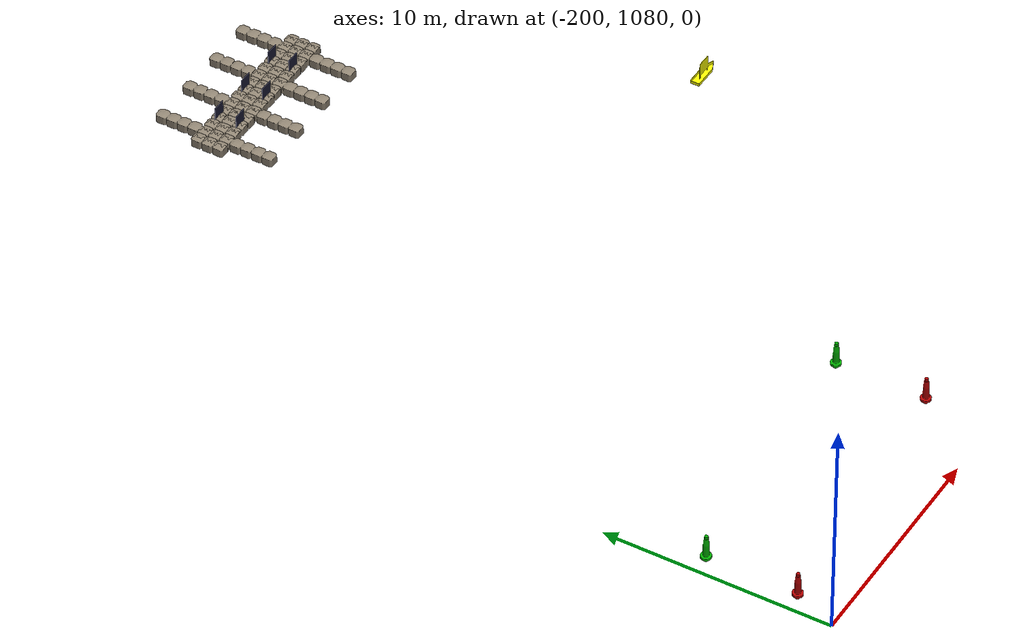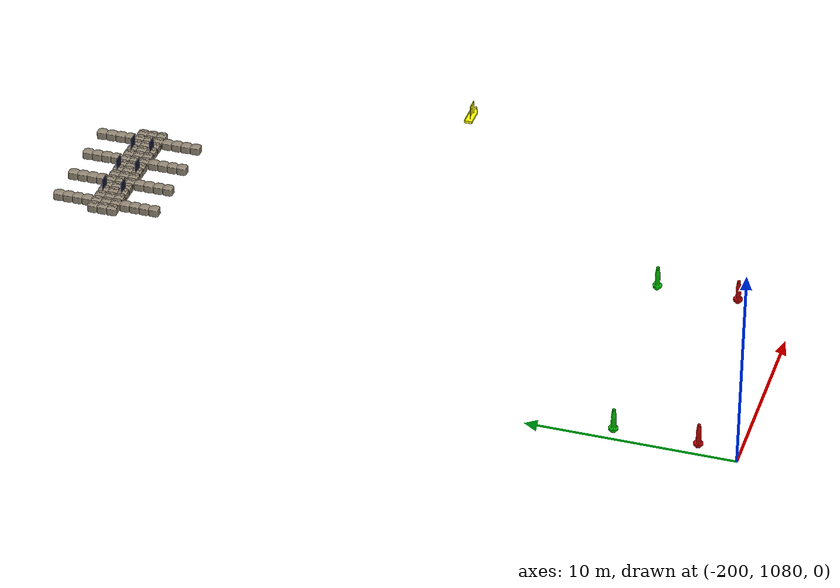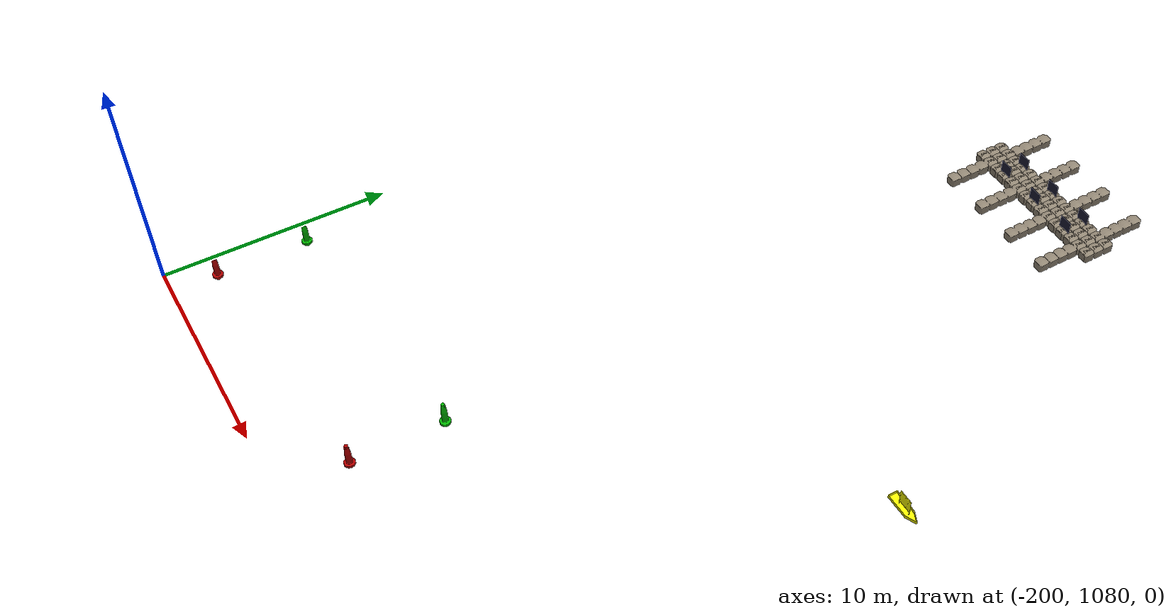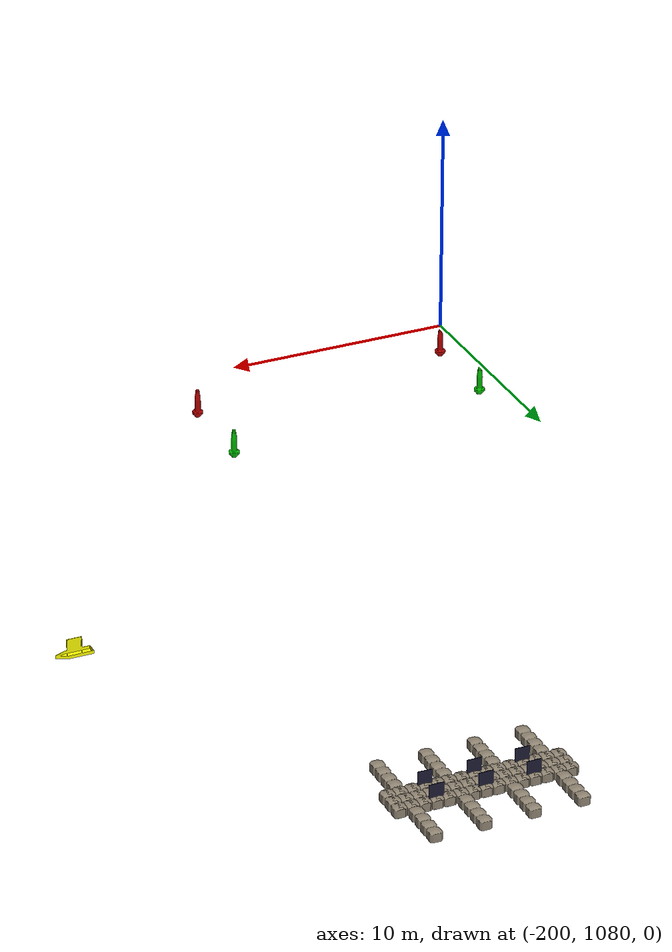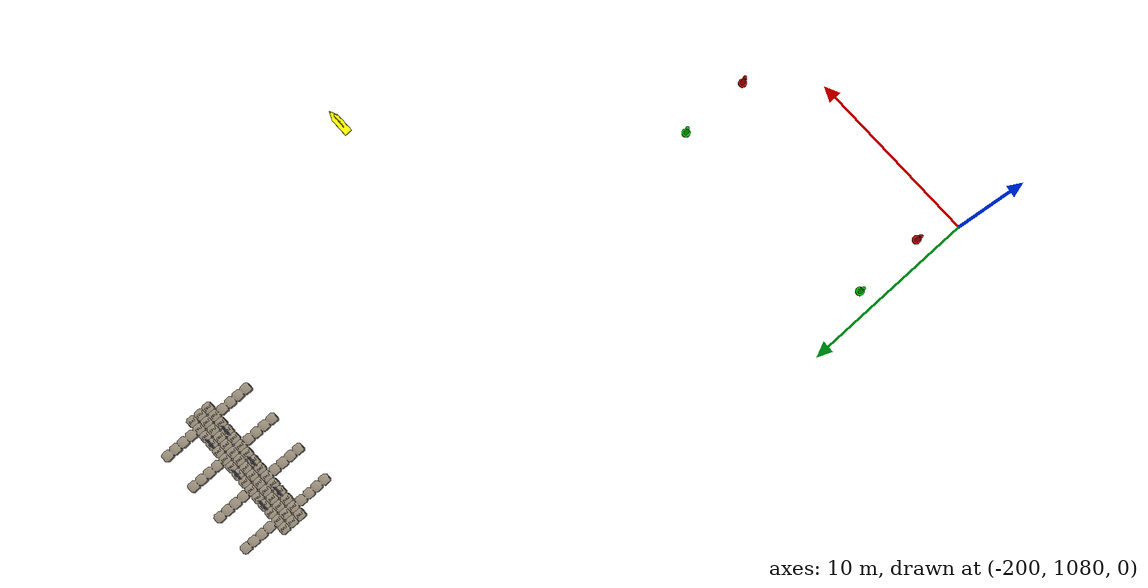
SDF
<sdf version="1.9">
 <world name="nbpark">
  <physics name="4ms" type="dart">
   <max_step_size>0.004</max_step_size>
   <real_time_factor>1.0</real_time_factor>
  </physics>
  <plugin filename="gz-sim-physics-system" name="gz::sim::systems::Physics"/>
  <plugin filename="gz-sim-user-commands-system" name="gz::sim::systems::UserCommands"/>
  <plugin filename="gz-sim-sensors-system" name="gz::sim::systems::Sensors">
   <render_engine>ogre2</render_engine>
   <disable_on_drained_battery>true</disable_on_drained_battery>
  </plugin>
  <plugin filename="gz-sim-imu-system" name="gz::sim::systems::Imu"/>
  <plugin filename="gz-sim-magnetometer-system" name="gz::sim::systems::Magnetometer"/>
  <plugin filename="gz-sim-forcetorque-system" name="gz::sim::systems::ForceTorque"/>
  <plugin filename="gz-sim-particle-emitter2-system" name="gz::sim::systems::ParticleEmitter2"/>
  <plugin filename="gz-sim-scene-broadcaster-system" name="gz::sim::systems::SceneBroadcaster"/>
  <plugin filename="gz-sim-contact-system" name="gz::sim::systems::Contact"/>
  <plugin filename="gz-sim-navsat-system" name="gz::sim::systems::NavSat"/>
  <spherical_coordinates>
   <surface_model>EARTH_WGS84</surface_model>
   <world_frame_orientation>ENU</world_frame_orientation>
   <latitude_deg>27.367256</latitude_deg>
   <longitude_deg>-82.451120</longitude_deg>
   <elevation>0.0</elevation>
   <heading_deg>0.0</heading_deg>
  </spherical_coordinates>
  <light type="directional" name="sun">
   <pose>0 0 10 0 0 0</pose>
   <diffuse>0.8 0.8 0.8 1</diffuse>
   <specular>0 0 0 1</specular>
   <attenuation>
    <range>1000</range>
    <constant>0.9</constant>
    <linear>0.01</linear>
    <quadratic>0.001</quadratic>
   </attenuation>
   <direction>-0.5 0.1 -0.9</direction>
  </light>
  <plugin filename="libPublisherPlugin.so" name="vrx::PublisherPlugin">
   <message type="gz.msgs.Param" topic="/vrx/wavefield/parameters" every="2.0">params {
          key: "direction"
          value {
            type: DOUBLE
            double_value: 0.0
          }
        }
        params {
          key: "gain"
          value {
            type: DOUBLE
            double_value: 0
          }
        }
        params {
          key: "period"
          value {
            type: DOUBLE
            double_value: 5
          }
        }
        params {
          key: "steepness"
          value {
            type: DOUBLE
            double_value: 0
          }
        }</message>
  </plugin>
  <include>
   <name>mandatory_challenge</name>
   <pose>-180 1088 0 0 0 3.14</pose>
   <uri>mandatory_challenge</uri>
  </include>
  <include><name>docking_challenge</name><pose>-185 1115 0 0 0 0</pose><uri>docking_challenge</uri></include>
  <include><name>static_vessel</name><pose>-175 1100 0.27 0 0 0</pose><uri>static_vessel</uri></include>
 </world>
</sdf>

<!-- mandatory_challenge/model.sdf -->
<sdf version="1.6">
  <model name="mandatory_challenge">
    <!-- Gate G1 -->
    <include>
      <name>marker_buoy_port_G1</name>
      <pose>7 5 0 0 0 0</pose>
      <uri>marker_buoy_port</uri>
    </include>
    <include>
      <name>marker_buoy_starboard_G1</name>
      <pose>7 1 0 0 0 0</pose>
      <uri>marker_buoy_starboard</uri>
    </include>

    <!-- Gate G2 -->
    <include>
      <name>marker_buoy_port_G2</name>
      <pose>19 6 0 0 0 0</pose>
      <uri>marker_buoy_port</uri>
    </include>
    <include>
      <name>marker_buoy_starboard_G2</name>
      <pose>19 2 0 0 0 0</pose>
      <uri>marker_buoy_starboard</uri>
    </include>
  </model>
</sdf>

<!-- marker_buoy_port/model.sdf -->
<sdf version="1.6">
  <model name="marker_buoy_port">
    <link name='cylinder'>
      <inertial>
        <mass>0.068793</mass>
        <inertia>
          <ixx>0.00543853</ixx>
          <ixy>0</ixy>
          <ixz>0</ixz>
          <iyy>0.00543853</iyy>
          <iyz>0</iyz>
          <izz>0.0006256</izz>
        </inertia>
        <pose>0 0 0 0 -0 0</pose>
      </inertial>
      <pose>0 0 0.496472 0 -0 0</pose>
      <gravity>1</gravity>
      <self_collide>0</self_collide>
      <kinematic>0</kinematic>
      <enable_wind>0</enable_wind>
      <collision name='collision'>
        <laser_retro>0</laser_retro>
        <max_contacts>10</max_contacts>
        <pose>0 0 0 0 -0 0</pose>
        <geometry>
          <cylinder>
            <radius>0.3</radius>
            <length>0.945576</length>
          </cylinder>
        </geometry>
        <surface>
          <friction>
            <ode>
              <mu>1</mu>
              <mu2>1</mu2>
              <fdir1>0 0 0</fdir1>
              <slip1>0</slip1>
              <slip2>0</slip2>
            </ode>
            <torsional>
              <coefficient>1</coefficient>
              <patch_radius>0</patch_radius>
              <surface_radius>0</surface_radius>
              <use_patch_radius>1</use_patch_radius>
              <ode>
                <slip>0</slip>
              </ode>
            </torsional>
          </friction>
          <bounce>
            <restitution_coefficient>0</restitution_coefficient>
            <threshold>1e+06</threshold>
          </bounce>
          <contact>
            <collide_without_contact>0</collide_without_contact>
            <collide_without_contact_bitmask>1</collide_without_contact_bitmask>
            <collide_bitmask>1</collide_bitmask>
            <ode>
              <soft_cfm>0</soft_cfm>
              <soft_erp>0.2</soft_erp>
              <kp>1e+13</kp>
              <kd>1</kd>
              <max_vel>0.01</max_vel>
              <min_depth>0</min_depth>
            </ode>
            <bullet>
              <split_impulse>1</split_impulse>
              <split_impulse_penetration_threshold>-0.01</split_impulse_penetration_threshold>
              <soft_cfm>0</soft_cfm>
              <soft_erp>0.2</soft_erp>
              <kp>1e+13</kp>
              <kd>1</kd>
            </bullet>
          </contact>
        </surface>
      </collision>
    </link>

    <link name='base'>
      <inertial>
        <mass>0.0961519</mass>
        <inertia>
          <ixx>0.00264433</ixx>
          <ixy>0</ixy>
          <ixz>0</ixz>
          <iyy>0.00264433</iyy>
          <iyz>0</iyz>
          <izz>0.00382696</izz>
        </inertia>
        <pose>0 0 0 0 -0 0</pose>
      </inertial>
      <pose>0 0 0.003528 0 -0 0</pose>
      <gravity>1</gravity>
      <self_collide>0</self_collide>
      <kinematic>0</kinematic>
      <enable_wind>0</enable_wind>
      <visual name="visual">
        <pose>0 0 -0.3 1.57 0 0</pose>
        <geometry>
          <mesh>
            <uri>file://marker_buoy_port/meshes/sur-Mark_marker.stl</uri>
            <scale>0.001 0.001 0.001</scale>
          </mesh>
        </geometry>
        <material>
          <ambient>0.3 0.3 0.3 1</ambient>
          <diffuse>0.7 0 0 1</diffuse>
          <specular>0.01 0.01 0.01 1</specular>
        </material>
      </visual>
      <collision name='collision'>
        <laser_retro>0</laser_retro>
        <max_contacts>10</max_contacts>
        <pose>0 0 0 0 -0 0</pose>
        <geometry>
          <cylinder>
            <radius>0.282139</radius>
            <length>0.302013</length>
          </cylinder>
        </geometry>
        <surface>
          <friction>
            <ode>
              <mu>1</mu>
              <mu2>1</mu2>
              <fdir1>0 0 0</fdir1>
              <slip1>0</slip1>
              <slip2>0</slip2>
            </ode>
            <torsional>
              <coefficient>1</coefficient>
              <patch_radius>0</patch_radius>
              <surface_radius>0</surface_radius>
              <use_patch_radius>1</use_patch_radius>
              <ode>
                <slip>0</slip>
              </ode>
            </torsional>
          </friction>
          <bounce>
            <restitution_coefficient>0</restitution_coefficient>
            <threshold>1e+06</threshold>
          </bounce>
          <contact>
            <collide_without_contact>0</collide_without_contact>
            <collide_without_contact_bitmask>1</collide_without_contact_bitmask>
            <collide_bitmask>1</collide_bitmask>
            <ode>
              <soft_cfm>0</soft_cfm>
              <soft_erp>0.2</soft_erp>
              <kp>1e+13</kp>
              <kd>1</kd>
              <max_vel>0.01</max_vel>
              <min_depth>0</min_depth>
            </ode>
            <bullet>
              <split_impulse>1</split_impulse>
              <split_impulse_penetration_threshold>-0.01</split_impulse_penetration_threshold>
              <soft_cfm>0</soft_cfm>
              <soft_erp>0.2</soft_erp>
              <kp>1e+13</kp>
              <kd>1</kd>
            </bullet>
          </contact>
        </surface>
      </collision>
    </link>
    <joint name = "joint1" type = "fixed">
      <parent>base</parent>
      <child>cylinder</child>
    </joint>
    <static>0</static>
    <allow_auto_disable>1</allow_auto_disable>
    <!-- Hydrodynamics plugin -->
      <plugin
        filename="gz-waves1-hydrodynamics-system"
        name="gz::sim::systems::Hydrodynamics">

        <link_name>cylinder</link_name>

        <hydrodynamics>
            <damping_on>1</damping_on>
            <viscous_drag_on>1</viscous_drag_on>
            <pressure_drag_on>1</pressure_drag_on>

            <!-- Linear and Angular Damping -->
            <cDampL1>1.0E-6</cDampL1>
            <cDampL2>1.0E-6</cDampL2>
            <cDampR1>1.0E-6</cDampR1>
            <cDampR2>1.0E-6</cDampR2>

            <!-- 'Pressure' Drag -->
            <cPDrag1>1.0E+2</cPDrag1>
            <cPDrag2>1.0E+2</cPDrag2>
            <fPDrag>0.4</fPDrag>
            <cSDrag1>1.0E+2</cSDrag1>
            <cSDrag2>1.0E+2</cSDrag2>
            <fSDrag>0.4</fSDrag>
            <vRDrag>1.0</vRDrag>
        </hydrodynamics>

        <!-- Control visibility of markers -->
        <markers>
            <update_rate>10</update_rate>
            <water_patch>0</water_patch>
            <waterline>0</waterline>
            <underwater_surface>0</underwater_surface>
        </markers>
      </plugin>
  </model>
</sdf>

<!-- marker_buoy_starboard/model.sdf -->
<sdf version='1.6'>
  <model name='Starboard Marker Buoy (green)'>
    <link name='cylinder'>
      <inertial>
        <mass>0.068793</mass>
        <inertia>
          <ixx>0.00543853</ixx>
          <ixy>0</ixy>
          <ixz>0</ixz>
          <iyy>0.00543853</iyy>
          <iyz>0</iyz>
          <izz>0.0006256</izz>
        </inertia>
        <pose>0 0 0 0 -0 0</pose>
      </inertial>
      <pose>0 0 0.496472 0 -0 0</pose>
      <gravity>1</gravity>
      <self_collide>0</self_collide>
      <kinematic>0</kinematic>
      <enable_wind>0</enable_wind>
      <collision name='collision'>
        <laser_retro>0</laser_retro>
        <max_contacts>10</max_contacts>
        <pose>0 0 0 0 -0 0</pose>
        <geometry>
          <cylinder>
            <radius>0.3</radius>
            <length>0.945576</length>
          </cylinder>
        </geometry>
        <surface>
          <friction>
            <ode>
              <mu>1</mu>
              <mu2>1</mu2>
              <fdir1>0 0 0</fdir1>
              <slip1>0</slip1>
              <slip2>0</slip2>
            </ode>
            <torsional>
              <coefficient>1</coefficient>
              <patch_radius>0</patch_radius>
              <surface_radius>0</surface_radius>
              <use_patch_radius>1</use_patch_radius>
              <ode>
                <slip>0</slip>
              </ode>
            </torsional>
          </friction>
          <bounce>
            <restitution_coefficient>0</restitution_coefficient>
            <threshold>1e+06</threshold>
          </bounce>
          <contact>
            <collide_without_contact>0</collide_without_contact>
            <collide_without_contact_bitmask>1</collide_without_contact_bitmask>
            <collide_bitmask>1</collide_bitmask>
            <ode>
              <soft_cfm>0</soft_cfm>
              <soft_erp>0.2</soft_erp>
              <kp>1e+13</kp>
              <kd>1</kd>
              <max_vel>0.01</max_vel>
              <min_depth>0</min_depth>
            </ode>
            <bullet>
              <split_impulse>1</split_impulse>
              <split_impulse_penetration_threshold>-0.01</split_impulse_penetration_threshold>
              <soft_cfm>0</soft_cfm>
              <soft_erp>0.2</soft_erp>
              <kp>1e+13</kp>
              <kd>1</kd>
            </bullet>
          </contact>
        </surface>
      </collision>
    </link>

    <link name='base'>
      <inertial>
        <mass>0.0961519</mass>
        <inertia>
          <ixx>0.00264433</ixx>
          <ixy>0</ixy>
          <ixz>0</ixz>
          <iyy>0.00264433</iyy>
          <iyz>0</iyz>
          <izz>0.00382696</izz>
        </inertia>
        <pose>0 0 0 0 -0 0</pose>
      </inertial>
      <pose>0 0 0.003528 0 -0 0</pose>
      <gravity>1</gravity>
      <self_collide>0</self_collide>
      <kinematic>0</kinematic>
      <enable_wind>0</enable_wind>
      <visual name="visual">
        <pose>0 0 -0.3 1.57 0 0</pose>
        <geometry>
          <mesh>
            <uri>file://marker_buoy_port/meshes/sur-Mark_marker.stl</uri>
            <scale>0.001 0.001 0.001</scale>
          </mesh>
        </geometry>
        <material>
          <ambient>0.3 0.3 0.3 1</ambient>
          <diffuse>0 0.7 0 1</diffuse>
          <specular>0.01 0.01 0.01 1</specular>
        </material>
      </visual>
      <collision name='collision'>
        <laser_retro>0</laser_retro>
        <max_contacts>10</max_contacts>
        <pose>0 0 0 0 -0 0</pose>
        <geometry>
          <cylinder>
            <radius>0.282139</radius>
            <length>0.302013</length>
          </cylinder>
        </geometry>
        <surface>
          <friction>
            <ode>
              <mu>1</mu>
              <mu2>1</mu2>
              <fdir1>0 0 0</fdir1>
              <slip1>0</slip1>
              <slip2>0</slip2>
            </ode>
            <torsional>
              <coefficient>1</coefficient>
              <patch_radius>0</patch_radius>
              <surface_radius>0</surface_radius>
              <use_patch_radius>1</use_patch_radius>
              <ode>
                <slip>0</slip>
              </ode>
            </torsional>
          </friction>
          <bounce>
            <restitution_coefficient>0</restitution_coefficient>
            <threshold>1e+06</threshold>
          </bounce>
          <contact>
            <collide_without_contact>0</collide_without_contact>
            <collide_without_contact_bitmask>1</collide_without_contact_bitmask>
            <collide_bitmask>1</collide_bitmask>
            <ode>
              <soft_cfm>0</soft_cfm>
              <soft_erp>0.2</soft_erp>
              <kp>1e+13</kp>
              <kd>1</kd>
              <max_vel>0.01</max_vel>
              <min_depth>0</min_depth>
            </ode>
            <bullet>
              <split_impulse>1</split_impulse>
              <split_impulse_penetration_threshold>-0.01</split_impulse_penetration_threshold>
              <soft_cfm>0</soft_cfm>
              <soft_erp>0.2</soft_erp>
              <kp>1e+13</kp>
              <kd>1</kd>
            </bullet>
          </contact>
        </surface>
      </collision>
    </link>
    <joint name = "joint1" type = "fixed">
      <parent>base</parent>
      <child>cylinder</child>
    </joint>
    <static>0</static>
    <allow_auto_disable>1</allow_auto_disable>
    <!-- Hydrodynamics plugin -->
      <plugin
        filename="gz-waves1-hydrodynamics-system"
        name="gz::sim::systems::Hydrodynamics">

        <link_name>cylinder</link_name>

        <hydrodynamics>
            <damping_on>1</damping_on>
            <viscous_drag_on>1</viscous_drag_on>
            <pressure_drag_on>1</pressure_drag_on>

            <!-- Linear and Angular Damping -->
            <cDampL1>1.0E-6</cDampL1>
            <cDampL2>1.0E-6</cDampL2>
            <cDampR1>1.0E-6</cDampR1>
            <cDampR2>1.0E-6</cDampR2>

            <!-- 'Pressure' Drag -->
            <cPDrag1>1.0E+2</cPDrag1>
            <cPDrag2>1.0E+2</cPDrag2>
            <fPDrag>0.4</fPDrag>
            <cSDrag1>1.0E+2</cSDrag1>
            <cSDrag2>1.0E+2</cSDrag2>
            <fSDrag>0.4</fSDrag>
            <vRDrag>1.0</vRDrag>
        </hydrodynamics>

        <!-- Control visibility of markers -->
        <markers>
            <update_rate>10</update_rate>
            <water_patch>0</water_patch>
            <waterline>0</waterline>
            <underwater_surface>0</underwater_surface>
        </markers>
        </plugin>
  </model>

</sdf>

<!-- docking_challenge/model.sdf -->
<sdf version="1.6">
  <model name="docking_challenge">
    <!-- Docking Challenge -->
    <include>
      <name>dock_1</name>
      <pose>0 0 0 0 0 -1.57079</pose>
      <uri>dock</uri>
    </include>

    <include>
      <name>dock_2</name>
      <pose>0 0 0 0 0 1.57079</pose>
      <uri>dock</uri>
    </include>

    <include>
      <name>sign_1</name>
      <pose>-2.02 -0.5 0.45 0 0 1.57079</pose>
      <uri>plus_sign</uri>
    </include>

    <include>
      <name>sign_2</name>
      <pose>-2.02 0.5 0.45 0 0 1.57079</pose>
      <uri>plus_sign</uri>
    </include>

    <include>
      <name>sign_3</name>
      <pose>-0.02 -0.5 0.45 0 0 1.57079</pose>
      <uri>plus_sign</uri>
    </include>

    <include>
      <name>sign_4</name>
      <pose>-0.02 0.5 0.45 0 0 1.57079</pose>
      <uri>plus_sign</uri>
    </include>

    <include>
      <name>sign_5</name>
      <pose>2.02 -0.5 0.45 0 0 1.57079</pose>
      <uri>plus_sign</uri>
    </include>

    <include>
      <name>sign_6</name>
      <pose>2.02 0.5 0.45 0 0 1.57079</pose>
      <uri>plus_sign</uri>
    </include>

  </model>
</sdf>

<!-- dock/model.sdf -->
<sdf version="1.6">
  <model name="Dock">
    <static>true</static>
    <link name="base_link">
      <visual name="dock">
        <geometry>
          <mesh>
            <uri>model://dock/assets/dock.stl</uri>
          </mesh>
        </geometry>
        <material>
          <ambient>0.34 0.31 0.27 1</ambient>
          <!-- Red color -->
          <diffuse>0.559642 0.515643 0.446934 1</diffuse>
          <specular>0.01 0.01 0.01 1</specular>
        </material>
      </visual>
      <collision name='base'>
        <geometry>
          <box>
            <size>1.51954 7.60376 0.406521</size>
          </box>
        </geometry>
      </collision>
      <collision name='tine1'>
        <pose>1.77361 3.02886 0 0 0 0</pose>
        <geometry>
          <box>
            <size>2.02606 0.506918 0.406521</size>
          </box>
        </geometry>
      </collision>
      <collision name='tine2'>
        <pose>1.77361 1.001188 0 0 0 0</pose>
        <geometry>
          <box>
            <size>2.02606 0.506918 0.406521</size>
          </box>
        </geometry>
      </collision>
      <collision name='tine3'>
        <pose>1.77361 -1.02648 0 0 0 0</pose>
        <geometry>
          <box>
            <size>2.02606 0.506918 0.406521</size>
          </box>
        </geometry>
      </collision>
      <collision name='tine4'>
        <pose>1.77361 -3.05416 0 0 0 0</pose>
        <geometry>
          <box>
            <size>2.02606 0.506918 0.406521</size>
          </box>
        </geometry>
      </collision>
    </link>
  </model>
</sdf>

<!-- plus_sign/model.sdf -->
<sdf version="1.6">
  <model name="plus_sign">
    <static>true</static>
    <link name="base_link">
      <collision name="sign">
        <geometry>
          <box>
            <size>0.019 0.6096 0.6096</size>
          </box>
        </geometry>
      </collision>
      <visual name="sign">

        <geometry>
          <box>
            <size>0.019 0.6096 0.6096</size>
          </box>
        </geometry>

        <material>
          <ambient>0.1 0.1 0.1 1</ambient>
          <diffuse>0.1 0.1 0.2 1</diffuse>
          <specular>0 0 0 0</specular>
          <emissive>0 0 0 1</emissive>
        </material>
      </visual>
    </link>
  </model>
</sdf>

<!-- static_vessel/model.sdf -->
<sdf version="1.6">
    <model name="static_vessel">
        <static>true</static>
        <link name="link">
            <inertial>
                <pose>0 0 0 0 0 0</pose>
                <inertia>
                    <ixx>0.0875</ixx>
                    <ixy>0</ixy>
                    <ixz>0</ixz>
                    <iyy>0.0875</iyy>
                    <iyz>0</iyz>
                    <izz>0.0875</izz>
                </inertia>
            </inertial>
            <collision name="collision">
                <geometry>
                    <sphere>
                        <radius>0.25</radius>
                    </sphere>
                </geometry>
            </collision>
            <visual name="visual">
                <geometry>
                    <mesh>
                        <uri>meshes/static_vessel.dae</uri>
                    </mesh>
                </geometry>
                <material>
                    <ambient>1 0 0 1</ambient>
                    <diffuse>1 1 0 1</diffuse>
                    <specular>1 1 0 1</specular>
                </material>
            </visual>
        </link>
    </model>
</sdf>
